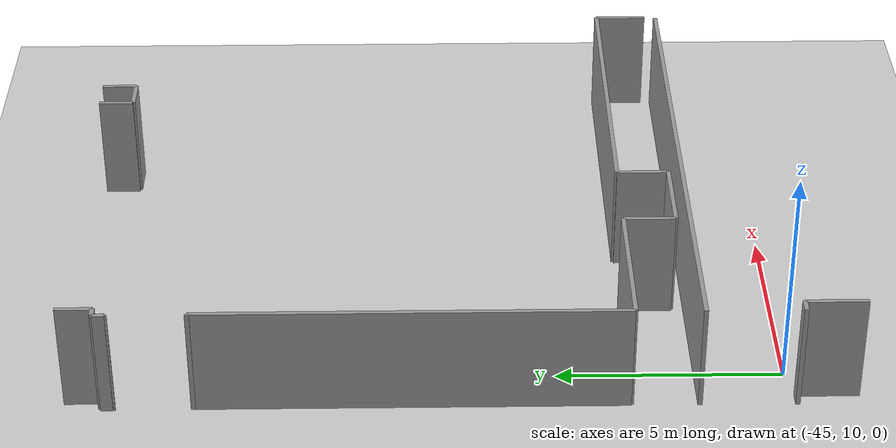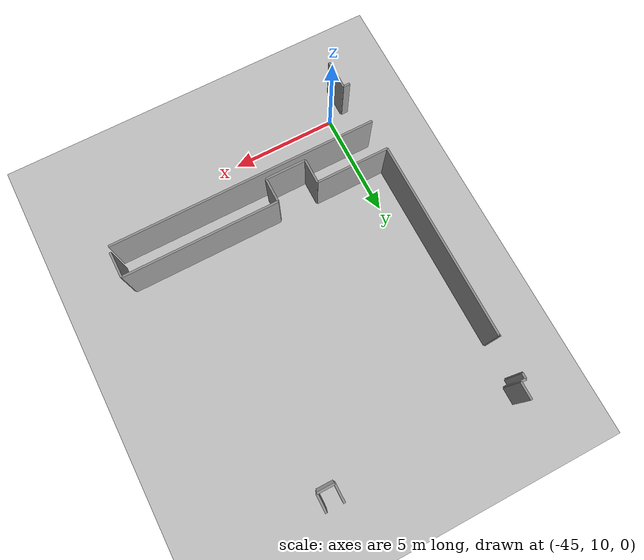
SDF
<sdf version="1.6">
 <world name="default">
  <model name="ground_plane">
   <static>1</static>
   <link name="link">
    <collision name="collision">
     <geometry><plane><normal>0 0 1</normal><size>100 100</size></plane></geometry>
     <surface><friction><ode><mu>100</mu><mu2>50</mu2></ode></friction></surface>
    </collision>
    <visual name="visual">
     <cast_shadows>0</cast_shadows>
     <geometry><plane><normal>0 0 1</normal><size>100 100</size></plane></geometry>
     <material>
      <script><uri>file://media/materials/scripts/gazebo.material</uri><name>Gazebo/Grey</name></script>
     </material>
    </visual>
   </link>
  </model>
  <model name="50045367">
   <static>1</static>
   <link name="Wall_11">
    <collision name="Wall_11_Collision">
     <geometry><box><size>9.41130138727 0.1 2.5</size></box></geometry>
     <pose>4.70565069363 0 1.25 0 0 0</pose>
    </collision>
    <visual name="Wall_11_Visual">
     <pose>4.70565069363 0 1.25 0 0 0</pose>
     <geometry><box><size>9.41130138727 0.1 2.5</size></box></geometry>
     <material>
      <script><uri>file://media/materials/scripts/gazebo.material</uri><name>Gazebo/Grey</name></script>
      <ambient>1 1 1 1</ambient>
     </material>
    </visual>
    <pose>7.19891762793 -12.2203872148 0 0 0 1.57079632679</pose>
   </link>
   <link name="Wall_12">
    <collision name="Wall_12_Collision">
     <geometry><box><size>0.055134915392 0.1 2.5</size></box></geometry>
     <pose>0.027567457696 0 1.25 0 0 0</pose>
    </collision>
    <visual name="Wall_12_Visual">
     <pose>0.027567457696 0 1.25 0 0 0</pose>
     <geometry><box><size>0.055134915392 0.1 2.5</size></box></geometry>
     <material>
      <script><uri>file://media/materials/scripts/gazebo.material</uri><name>Gazebo/Grey</name></script>
      <ambient>1 1 1 1</ambient>
     </material>
    </visual>
    <pose>7.19891762793 -2.80908582753 0 0 0 3.14159265359</pose>
   </link>
   <link name="Wall_13">
    <collision name="Wall_13_Collision">
     <geometry><box><size>0.0356979521317 0.1 2.5</size></box></geometry>
     <pose>0.0178489760659 0 1.25 0 0 0</pose>
    </collision>
    <visual name="Wall_13_Visual">
     <pose>0.0178489760659 0 1.25 0 0 0</pose>
     <geometry><box><size>0.0356979521317 0.1 2.5</size></box></geometry>
     <material>
      <script><uri>file://media/materials/scripts/gazebo.material</uri><name>Gazebo/Grey</name></script>
      <ambient>1 1 1 1</ambient>
     </material>
    </visual>
    <pose>7.14378271254 -1.08808882565 0 0 0 0.0</pose>
   </link>
   <link name="Wall_14">
    <collision name="Wall_14_Collision">
     <geometry><box><size>0.271609329742 0.1 2.5</size></box></geometry>
     <pose>0.135804664871 0 1.25 0 0 0</pose>
    </collision>
    <visual name="Wall_14_Visual">
     <pose>0.135804664871 0 1.25 0 0 0</pose>
     <geometry><box><size>0.271609329742 0.1 2.5</size></box></geometry>
     <material>
      <script><uri>file://media/materials/scripts/gazebo.material</uri><name>Gazebo/Grey</name></script>
      <ambient>1 1 1 1</ambient>
     </material>
    </visual>
    <pose>7.17948066467 -1.08808882565 0 0 0 1.57079632679</pose>
   </link>
   <link name="Wall_15">
    <collision name="Wall_15_Collision">
     <geometry><box><size>0.233624676051 0.1 2.5</size></box></geometry>
     <pose>0.116812338025 0 1.25 0 0 0</pose>
    </collision>
    <visual name="Wall_15_Visual">
     <pose>0.116812338025 0 1.25 0 0 0</pose>
     <geometry><box><size>0.233624676051 0.1 2.5</size></box></geometry>
     <material>
      <script><uri>file://media/materials/scripts/gazebo.material</uri><name>Gazebo/Grey</name></script>
      <ambient>1 1 1 1</ambient>
     </material>
    </visual>
    <pose>7.17948066467 -0.816479495909 0 0 0 0.0</pose>
   </link>
   <link name="Wall_16">
    <collision name="Wall_16_Collision">
     <geometry><box><size>0.808476040449 0.1 2.5</size></box></geometry>
     <pose>0.404238020225 0 1.25 0 0 0</pose>
    </collision>
    <visual name="Wall_16_Visual">
     <pose>0.404238020225 0 1.25 0 0 0</pose>
     <geometry><box><size>0.808476040449 0.1 2.5</size></box></geometry>
     <material>
      <script><uri>file://media/materials/scripts/gazebo.material</uri><name>Gazebo/Grey</name></script>
      <ambient>1 1 1 1</ambient>
     </material>
    </visual>
    <pose>7.41310534072 -0.816479495909 0 0 0 1.57079632679</pose>
   </link>
   <link name="Wall_17">
    <collision name="Wall_17_Collision">
     <geometry><box><size>0.808476040449 0.1 2.5</size></box></geometry>
     <pose>0.404238020225 0 1.25 0 0 0</pose>
    </collision>
    <visual name="Wall_17_Visual">
     <pose>0.404238020225 0 1.25 0 0 0</pose>
     <geometry><box><size>0.808476040449 0.1 2.5</size></box></geometry>
     <material>
      <script><uri>file://media/materials/scripts/gazebo.material</uri><name>Gazebo/Grey</name></script>
      <ambient>1 1 1 1</ambient>
     </material>
    </visual>
    <pose>15.857767163 -0.00800345546013 0 0 0 -1.57079632679</pose>
   </link>
   <link name="Wall_18">
    <collision name="Wall_18_Collision">
     <geometry><box><size>0.789547233091 0.1 2.5</size></box></geometry>
     <pose>0.394773616546 0 1.25 0 0 0</pose>
    </collision>
    <visual name="Wall_18_Visual">
     <pose>0.394773616546 0 1.25 0 0 0</pose>
     <geometry><box><size>0.789547233091 0.1 2.5</size></box></geometry>
     <material>
      <script><uri>file://media/materials/scripts/gazebo.material</uri><name>Gazebo/Grey</name></script>
      <ambient>1 1 1 1</ambient>
     </material>
    </visual>
    <pose>15.857767163 -0.816479495909 0 0 0 0.0</pose>
   </link>
   <link name="Wall_19">
    <collision name="Wall_19_Collision">
     <geometry><box><size>0.808476040449 0.1 2.5</size></box></geometry>
     <pose>0.404238020225 0 1.25 0 0 0</pose>
    </collision>
    <visual name="Wall_19_Visual">
     <pose>0.404238020225 0 1.25 0 0 0</pose>
     <geometry><box><size>0.808476040449 0.1 2.5</size></box></geometry>
     <material>
      <script><uri>file://media/materials/scripts/gazebo.material</uri><name>Gazebo/Grey</name></script>
      <ambient>1 1 1 1</ambient>
     </material>
    </visual>
    <pose>16.6473143961 -0.816479495909 0 0 0 1.57079632679</pose>
   </link>
   <link name="Wall_26">
    <collision name="Wall_26_Collision">
     <geometry><box><size>1.21957416535 0.1 2.5</size></box></geometry>
     <pose>0.609787082677 0 1.25 0 0 0</pose>
    </collision>
    <visual name="Wall_26_Visual">
     <pose>0.609787082677 0 1.25 0 0 0</pose>
     <geometry><box><size>1.21957416535 0.1 2.5</size></box></geometry>
     <material>
      <script><uri>file://media/materials/scripts/gazebo.material</uri><name>Gazebo/Grey</name></script>
      <ambient>1 1 1 1</ambient>
     </material>
    </visual>
    <pose>19.9122160679 -13.4233192744 0 0 0 1.57079632679</pose>
   </link>
   <link name="Wall_27">
    <collision name="Wall_27_Collision">
     <geometry><box><size>7.32557548656 0.1 2.5</size></box></geometry>
     <pose>3.66278774328 0 1.25 0 0 0</pose>
    </collision>
    <visual name="Wall_27_Visual">
     <pose>3.66278774328 0 1.25 0 0 0</pose>
     <geometry><box><size>7.32557548656 0.1 2.5</size></box></geometry>
     <material>
      <script><uri>file://media/materials/scripts/gazebo.material</uri><name>Gazebo/Grey</name></script>
      <ambient>1 1 1 1</ambient>
     </material>
    </visual>
    <pose>19.9122160679 -12.203745109 0 0 0 3.14159265359</pose>
   </link>
   <link name="Wall_28">
    <collision name="Wall_28_Collision">
     <geometry><box><size>1.1777783424 0.1 2.5</size></box></geometry>
     <pose>0.588889171198 0 1.25 0 0 0</pose>
    </collision>
    <visual name="Wall_28_Visual">
     <pose>0.588889171198 0 1.25 0 0 0</pose>
     <geometry><box><size>1.1777783424 0.1 2.5</size></box></geometry>
     <material>
      <script><uri>file://media/materials/scripts/gazebo.material</uri><name>Gazebo/Grey</name></script>
      <ambient>1 1 1 1</ambient>
     </material>
    </visual>
    <pose>12.5866405813 -12.203745109 0 0 0 -1.57079632679</pose>
   </link>
   <link name="Wall_29">
    <collision name="Wall_29_Collision">
     <geometry><box><size>1.92121042736 0.1 2.5</size></box></geometry>
     <pose>0.96060521368 0 1.25 0 0 0</pose>
    </collision>
    <visual name="Wall_29_Visual">
     <pose>0.96060521368 0 1.25 0 0 0</pose>
     <geometry><box><size>1.92121042736 0.1 2.5</size></box></geometry>
     <material>
      <script><uri>file://media/materials/scripts/gazebo.material</uri><name>Gazebo/Grey</name></script>
      <ambient>1 1 1 1</ambient>
     </material>
    </visual>
    <pose>12.5866405813 -13.3815234514 0 0 0 3.14159265359</pose>
   </link>
   <link name="Wall_30">
    <collision name="Wall_30_Collision">
     <geometry><box><size>1.16939377001 0.1 2.5</size></box></geometry>
     <pose>0.584696885004 0 1.25 0 0 0</pose>
    </collision>
    <visual name="Wall_30_Visual">
     <pose>0.584696885004 0 1.25 0 0 0</pose>
     <geometry><box><size>1.16939377001 0.1 2.5</size></box></geometry>
     <material>
      <script><uri>file://media/materials/scripts/gazebo.material</uri><name>Gazebo/Grey</name></script>
      <ambient>1 1 1 1</ambient>
     </material>
    </visual>
    <pose>10.665430154 -13.3815234514 0 0 0 1.57079632679</pose>
   </link>
   <link name="Wall_31">
    <collision name="Wall_31_Collision">
     <geometry><box><size>3.46652236111 0.1 2.5</size></box></geometry>
     <pose>1.73326118055 0 1.25 0 0 0</pose>
    </collision>
    <visual name="Wall_31_Visual">
     <pose>1.73326118055 0 1.25 0 0 0</pose>
     <geometry><box><size>3.46652236111 0.1 2.5</size></box></geometry>
     <material>
      <script><uri>file://media/materials/scripts/gazebo.material</uri><name>Gazebo/Grey</name></script>
      <ambient>1 1 1 1</ambient>
     </material>
    </visual>
    <pose>10.665430154 -12.2121296814 0 0 0 -3.13921057139</pose>
   </link>
   <link name="Wall_94">
    <collision name="Wall_94_Collision">
     <geometry><box><size>1.37367244271 0.1 2.5</size></box></geometry>
     <pose>0.686836221353 0 1.25 0 0 0</pose>
    </collision>
    <visual name="Wall_94_Visual">
     <pose>0.686836221353 0 1.25 0 0 0</pose>
     <geometry><box><size>1.37367244271 0.1 2.5</size></box></geometry>
     <material>
      <script><uri>file://media/materials/scripts/gazebo.material</uri><name>Gazebo/Grey</name></script>
      <ambient>1 1 1 1</ambient>
     </material>
    </visual>
    <pose>7.46252350221 -17.183164795 0 0 0 1.57079632679</pose>
   </link>
   <link name="Wall_95">
    <collision name="Wall_95_Collision">
     <geometry><box><size>0.318740789674 0.1 2.5</size></box></geometry>
     <pose>0.159370394837 0 1.25 0 0 0</pose>
    </collision>
    <visual name="Wall_95_Visual">
     <pose>0.159370394837 0 1.25 0 0 0</pose>
     <geometry><box><size>0.318740789674 0.1 2.5</size></box></geometry>
     <material>
      <script><uri>file://media/materials/scripts/gazebo.material</uri><name>Gazebo/Grey</name></script>
      <ambient>1 1 1 1</ambient>
     </material>
    </visual>
    <pose>7.46252350221 -15.8094923523 0 0 0 3.14159265359</pose>
   </link>
   <link name="Wall_98">
    <collision name="Wall_98_Collision">
     <geometry><box><size>12.7308298186 0.1 2.5</size></box></geometry>
     <pose>6.36541490929 0 1.25 0 0 0</pose>
    </collision>
    <visual name="Wall_98_Visual">
     <pose>6.36541490929 0 1.25 0 0 0</pose>
     <geometry><box><size>12.7308298186 0.1 2.5</size></box></geometry>
     <material>
      <script><uri>file://media/materials/scripts/gazebo.material</uri><name>Gazebo/Grey</name></script>
      <ambient>1 1 1 1</ambient>
     </material>
    </visual>
    <pose>7.14378271254 -13.6988668123 0 0 0 0.0</pose>
   </link>
   <pose>-53.2 25.6193734438 0 0 0 0</pose>
  </model>
 </world>
</sdf>
